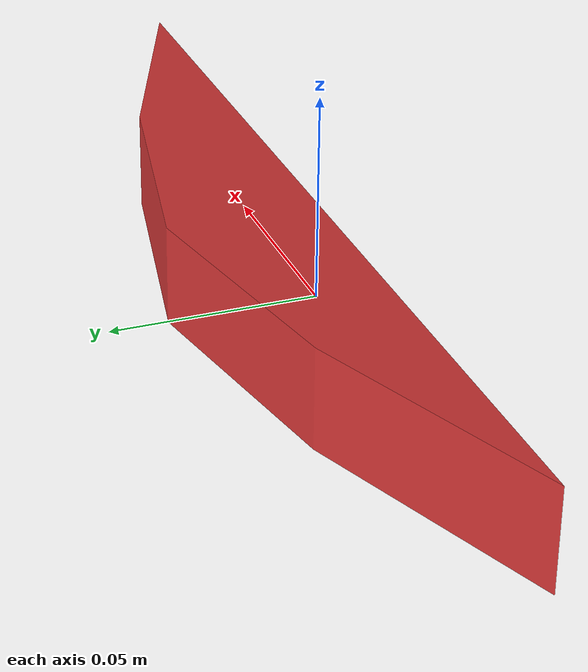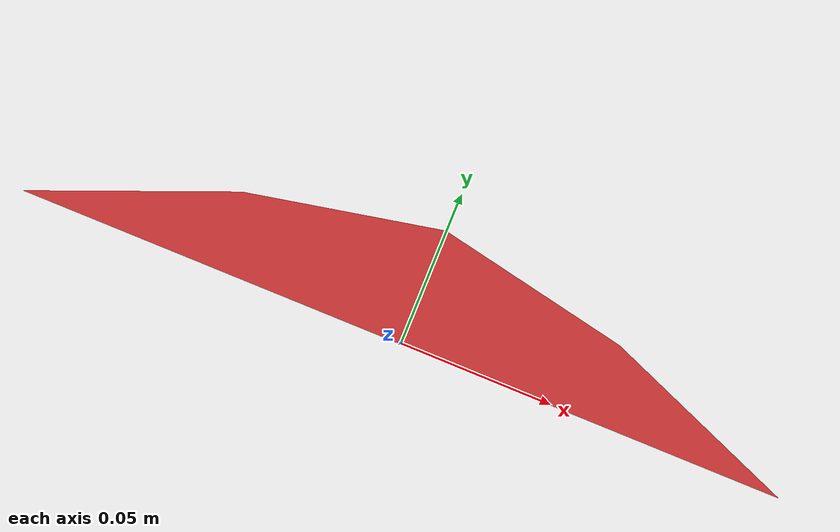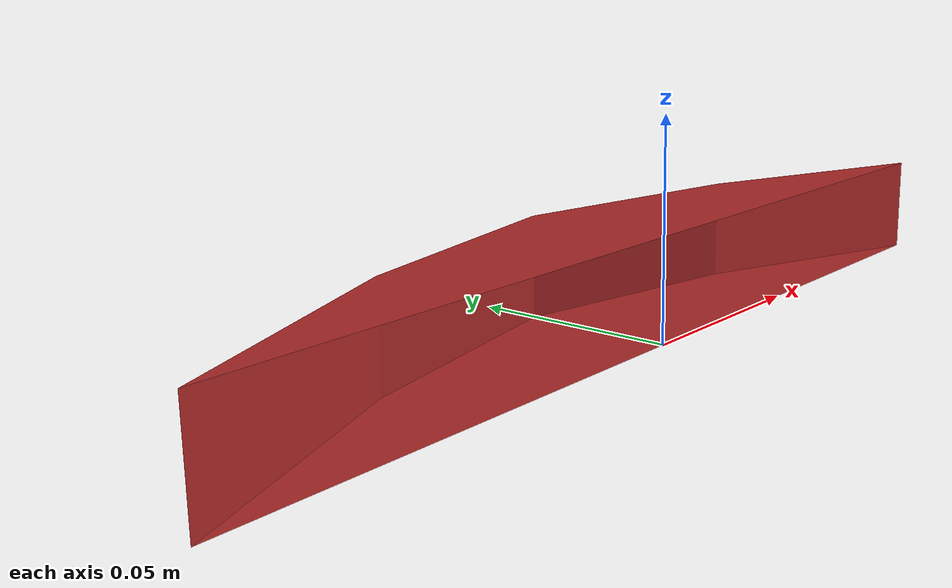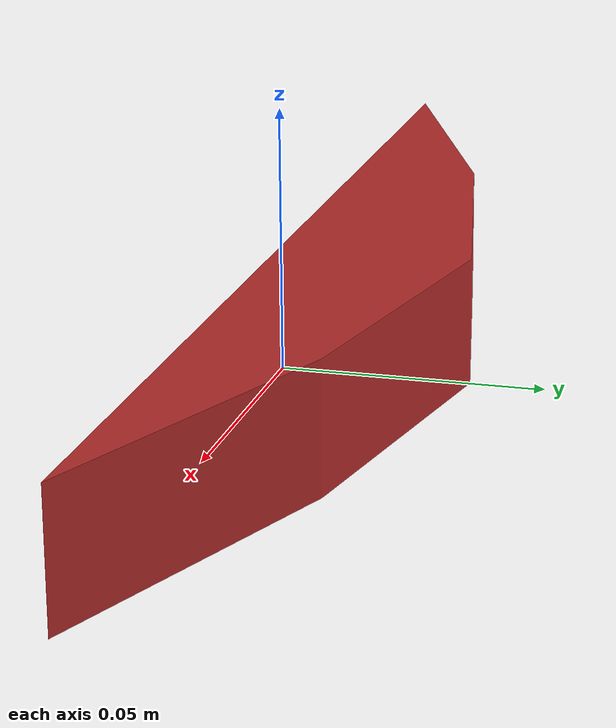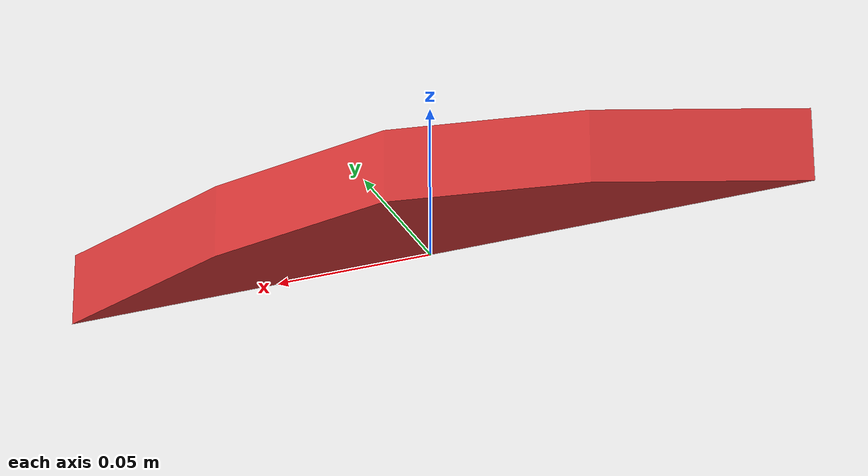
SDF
<?xml version="1.0"?>
<sdf version="1.7">
  <model name="banana_variant">
    <link name="banana_variant_link">
      <inertial>
        <mass>1.5</mass>
        <inertia>
          <ixx>0.013</ixx>
          <iyy>0.084</iyy>
          <izz>0.084</izz>
          <ixy>0.0</ixy>
          <ixz>0.0</ixz>
          <iyz>0.0</iyz>
        </inertia>
      </inertial>
      <visual name="banana_variant_visual">
        <geometry>
          <mesh>
            <uri>banana.obj</uri>
            <scale>0.12 0.12 0.12</scale>
          </mesh>
        </geometry>
        <material>
          <diffuse>0.8 0.2 0.2 1</diffuse>
          <ambient>0.3 0.1 0.1 1</ambient>
        </material>
      </visual>
    </link>
  </model>
</sdf>
